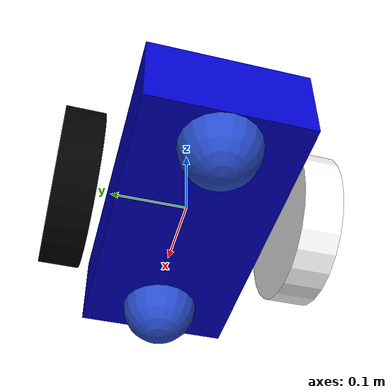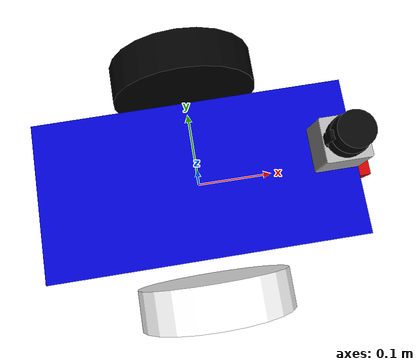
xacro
<?xml version='1.0'?>

<robot name="udacity_bot" xmlns:xacro="http://www.ros.org/wiki/xacro">

<xacro:include filename="$(find udacity_bot)/urdf/udacity_bot.gazebo"/>

        <material name="blue">
         <color rgba="0 0 0.8 1"/>
        </material>

        <material name="black">
         <color rgba="0 0 0 1"/>
        </material>

        <material name="red">
         <color rgba="0.8 0 0 1"/>
        </material>

        <material name="white">
         <color rgba="1 1 1 1"/>
        </material>

  <link name="robot_footprint"></link>

      <joint name="robot_footprint_joint" type="fixed">
        <origin xyz="0 0 0" rpy="0 0 0" />
        <parent link="robot_footprint"/>
        <child link="chassis" />
      </joint>

  <link name='chassis'>
    <pose>0 0 0.1 0 0 0</pose>

        <inertial>
            <mass value="15.0"/>
            <origin xyz="0.0 0 0" rpy=" 0 0 0"/>
            <inertia
                ixx="0.1" ixy="0" ixz="0"
                iyy="0.1" iyz="0"
                izz="0.1"
            />
        </inertial>

        <collision name='collision'>
            <origin xyz="0 0 0" rpy=" 0 0 0"/>
            <geometry>
              <box size=".4 .2 .1"/>
            </geometry>
        </collision>

        <visual>
            <origin xyz="0 0 0" rpy=" 0 0 0"/>
            <geometry>
              <box size=".4 .2 .1"/>
            </geometry>
                <material name="blue"/>
        </visual>

        <collision name='back_caster_collision'>
          <origin xyz="-0.15 0 -0.05" rpy=" 0 0 0"/>
          <geometry>
            <sphere radius="0.05"/>
          </geometry>
          <surface>
            <friction>
              <ode>
                <mu>0</mu>
                <mu2>0</mu2>
                <slip1>1.0</slip1>
                <slip2>1.0</slip2>
              </ode>
            </friction>
          </surface>
        </collision>

        <visual name='back_caster_visual'>
          <origin xyz="-0.15 0 -0.05" rpy=" 0 0 0"/>
          <geometry>
            <sphere radius="0.05"/>
          </geometry>
        </visual>

        <collision name='front_caster_collision'>
          <origin xyz="0.15 0 -0.05" rpy=" 0 0 0"/>
          <geometry>
            <sphere radius="0.05"/>
          </geometry>
          <surface>
            <friction>
              <ode>
                <mu>0</mu>
                <mu2>0</mu2>
                <slip1>1.0</slip1>
                <slip2>1.0</slip2>
              </ode>
            </friction>
          </surface>
        </collision>

        <visual>
          <origin xyz="0.15 0 -0.05" rpy=" 0 0 0"/>
          <geometry>
            <sphere radius="0.05"/>
          </geometry>
        </visual>

  </link>

    <link name="right_wheel">
      <visual>
        <origin rpy="0 1.5707 1.5707" xyz="0 0 0"/>
        <geometry>
          <cylinder length="0.05" radius="0.1"/>
        </geometry>
        <material name="white"/>
      </visual>

      <inertial>
            <mass value="5.0"/>
            <origin rpy="0 1.5707 1.5707" xyz="0 0 0"/>
            <inertia
                ixx="0.1" ixy="0" ixz="0"
                iyy="0.1" iyz="0"
                izz="0.1"
            />
      </inertial>

        <collision name='col_right_wheel'>
            <origin rpy="0 1.5707 1.5707" xyz="0 0 0"/>
            <geometry>
              <cylinder length="0.05" radius="0.1"/>
            </geometry>
        </collision>

    </link>

   <link name="left_wheel">
     <visual>
       <origin rpy="0 1.5707 1.5707" xyz="0 0 0"/>

       <geometry>
         <cylinder length="0.05" radius="0.1"/>
       </geometry>
       <material name="black"/>

     </visual>

      <inertial>
            <mass value="5.0"/>
            <origin rpy="0 1.5707 1.5707" xyz="0 0 0"/>
            <inertia
                ixx="0.1" ixy="0" ixz="0"
                iyy="0.1" iyz="0"
                izz="0.1"
            />
      </inertial>

        <collision name='col_left_wheel'>
            <origin rpy="0 1.5707 1.5707" xyz="0 0 0"/>
            <geometry>
              <cylinder length="0.05" radius="0.1"/>
            </geometry>
        </collision>

   </link>

   <link name="camera">

   <imageTopicName>image_raw</imageTopicName>

     <visual>
       <origin rpy="0 0 0" xyz="0 0 0"/>

       <geometry>
         <box size="0.05 0.05 0.05"/>
       </geometry>
       <material name="red"/>
     </visual>

      <inertial>
            <mass value="0.1"/>
            <origin rpy="0 0 0" xyz="0 0 0"/>
            <inertia
                ixx="0.1" ixy="0" ixz="0"
                iyy="0.1" iyz="0"
                izz="0.1"
            />
      </inertial>

        <collision name='col_camera'>
            <origin rpy="0 0 0" xyz="0 0 0"/>
            <geometry>
              <box size="0.05 0.05 0.05"/>
            </geometry>
        </collision>

    </link>

   <joint name="camera_joint" type="fixed">

      <parent link="chassis"/>

      <child link="camera"/>

      <origin rpy="0 0 0" xyz="0.2 0 0"/>

   </joint>

   <link name="hokuyo">
      <topicName>/udacity_bot/laser/scan</topicName>

     <visual>
       <origin rpy="0 0 0" xyz="0 0 0"/>
       <geometry>
         <mesh filename="package://udacity_bot/meshes/hokuyo.dae"/>
       </geometry>
     </visual>

      <inertial>
            <mass value="0.1"/>
            <origin rpy="0 0 0" xyz="0 0 0"/>
            <inertia
                ixx="0.1" ixy="0" ixz="0"
                iyy="0.1" iyz="0"
                izz="0.1"
            />
      </inertial>

        <collision name='col_hokuyo'>
            <origin rpy="0 0 0" xyz="0 0 0"/>
            <geometry>
              <mesh filename="package://udacity_bot/meshes/hokuyo.dae"/>
            </geometry>
        </collision>

    </link>

   <joint name="hokuyo_joint" type="fixed">

      <parent link="chassis"/>

      <child link="hokuyo"/>

      <origin rpy="0 0 0" xyz="0.15 0 0.15"/>

      <axis xyz="0 0 1" rpy="0 0 0"/>

   </joint>

    <joint name="right_wheel_hinge" type="continuous">

      <parent link="chassis"/>

      <child link="right_wheel"/>

      <origin rpy="0 0 0" xyz="0 -0.15 0"/>

      <axis xyz="0 1 0" rpy="0 0 0"/>

      <limit effort="10000" velocity="1000"/>

      <joint_properties damping="1.0" friction="1.0"/>

   </joint>

   <joint name="left_wheel_hinge" type="continuous">

      <parent link="chassis"/>

      <child link="left_wheel"/>

      <origin rpy="0 0 0" xyz="0 0.15 0"/>

      <axis xyz="0 1 0" rpy="0 0 0"/>

      <limit effort="10000" velocity="1000"/>

      <joint_properties damping="1.0" friction="1.0"/>

   </joint>

</robot>
